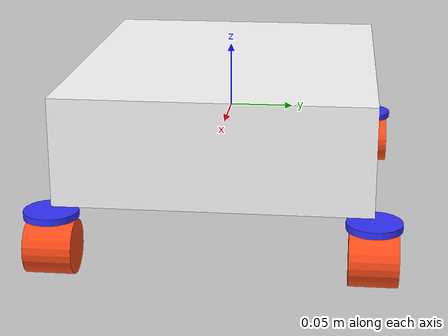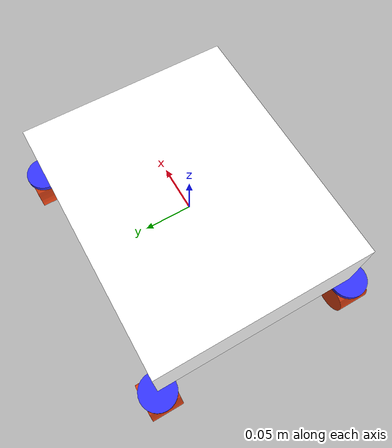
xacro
<?xml version="1.0"?>
<robot xmlns:xacro="http://www.ros.org/wiki/xacro"  name="robot">

    <xacro:include filename="inertial_macros.xacro" />
    <xacro:include filename="robot_properties.xacro" />
    <xacro:include filename="robot_swerve_drive.xacro" />
    <xacro:include filename="robot_core.xacro" />
    <xacro:include filename="ros2_control.xacro"/>
    <!--xacro:include filename="sim_control.xacro" /-->

</robot>

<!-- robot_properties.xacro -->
<robot xmlns:xacro="http://www.ros.org/wiki/xacro">
    <xacro:property name="chassis_length" value="0.280" />`
    <xacro:property name="chassis_width" value="0.230" />`
    <xacro:property name="chassis_height" value="0.080" />`
    <xacro:property name="wheel_length" value="0.035" />
    <xacro:property name="wheel_radius" value="0.020" />
    <xacro:property name="steering_length" value="0.005" />
    <xacro:property name="steering_radius" value="0.020" />
    <xacro:property name="steering_joint_x" value="0.140" />`
    <xacro:property name="steering_joint_y" value="0.115" />`
    <xacro:property name="steering_joint_z" value="0.045" />`
</robot>

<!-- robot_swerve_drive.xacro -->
<robot xmlns:xacro="http://www.ros.org/wiki/xacro">
    <xacro:macro name="swerve_drive" params="name x y z r">
        <link name="${name}_wheel">
            <xacro:include filename="robot_wheel.xacro" />
        </link>

        <link name="${name}_steering">
            <xacro:include filename="robot_steering.xacro" />
        </link>

        <joint name="${name}_steering_joint" type="revolute">
            <parent link="chassis"/>
                <child link="${name}_steering"/>
                <origin xyz="${x*steering_joint_x} ${y*steering_joint_y} ${z*steering_joint_z}"/>
                <limit effort="1000.0" lower="${-pi/3}" upper="${pi/3}" velocity="0.1"/>
            <axis xyz="0 0 -1"/>
        </joint>

        <joint name="${name}_wheel_joint" type="continuous">
            <parent link="${name}_steering"/>
            <child link="${name}_wheel"/>
            <origin xyz="0 0 -0.025" rpy="${r*pi/2} 0 0"/>
            <axis xyz="0 0 -1"/>
        </joint>
        <gazebo reference="${name}_wheel">
            <material>Gazebo/Orange</material>
        </gazebo>
        <gazebo reference="${name}_steering">
            <material>Gazebo/Yellow</material>
        </gazebo>
</xacro:macro>

    <xacro:macro name="swerve_drive_ros2_control" params="name">
        <joint name="${name}_wheel_joint">
            <command_interface name="velocity">
                <param name="min">-10</param>
                <param name="max">10</param>
            </command_interface>
            <state_interface name="velocity" />
            <state_interface name="position" />
        </joint>
        <joint name="${name}_steering_joint">
            <command_interface name="position">
                <param name="min">${-pi/3}</param>
                <param name="max">${pi/3}</param>
            </command_interface>
            <state_interface name="position" />
        </joint>
    </xacro:macro>
</robot>

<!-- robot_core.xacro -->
<robot xmlns:xacro="http://www.ros.org/wiki/xacro">
	<material name="white">
	    <color rgba="1 1 1 1"/>
	</material>

	<material name="orange">
	    <color rgba="1 0.3 0.1 1"/>
	</material>

	<material name="blue">
	    <color rgba="0.2 0.2 1 1"/>
	</material>

	<material name="black">
	    <color rgba="0 0 0 1"/>
    </material>
<link name="base_link">
</link>
<joint name="chassis_joint" type="fixed">
	<parent link="base_link"/>
    	<child link="chassis"/>
    	<origin xyz="0 0 0"/>
</joint>

<link name="chassis">
    <visual>
        <origin xyz="0 0 0" rpy="0 0 0"/>
        <geometry>
            <box size="${chassis_length} ${chassis_width} ${chassis_height}"/>
        </geometry>
        <material name="white"/>
    </visual>
    <collision>
        <origin xyz="0 0 0" rpy="0 0 0"/>
        <geometry>
            <box size="${chassis_length} ${chassis_width} ${chassis_height}"/>
        </geometry>
    </collision>
    <xacro:inertial_box mass="0.5" x="${chassis_length}" y="${chassis_width}" z="${chassis_height}">
        <origin xyz="0 0 0" rpy="0 0 0"/>
    </xacro:inertial_box>
</link>

<xacro:swerve_drive name="front_right" x="1" y="1" z="-1" r="-1"/>
<xacro:swerve_drive name="rear_right" x="-1" y="1" z="-1" r="-1"/>
<xacro:swerve_drive name="front_left" x="1" y="-1" z="-1" r="1"/>
<xacro:swerve_drive name="rear_left" x="-1" y="-1" z="-1" r="1"/>

<gazebo reference="base_link">
    <material>Gazebo/Green</material>
</gazebo>

<gazebo reference="chassis">
    <material>Gazebo/Blue</material>
</gazebo>

</robot>

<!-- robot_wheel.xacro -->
<link xmlns:xacro="http://www.ros.org/wiki/xacro">
	<visual>
	    <geometry>
            <cylinder length="${wheel_length}" radius="${wheel_radius}" />
	    </geometry>
	    <material name="orange"/>
    </visual>
    <collision>
	    <geometry>
            <cylinder length="${wheel_length}" radius="${wheel_radius}" />
	    </geometry>
    </collision>
    <xacro:inertial_cylinder mass="0.1" length="${wheel_length}" radius="${wheel_radius}">
        <origin xyz="0 0 0" rpy="0 0 0"/>
    </xacro:inertial_cylinder>
</link>

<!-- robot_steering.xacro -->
<link xmlns:xacro="http://www.ros.org/wiki/xacro">
	<visual>
	    <geometry>
            <cylinder length="${steering_length}" radius="${steering_radius}" />
	    </geometry>
	    <material name="blue"/>
    </visual>
    <collision>
	    <geometry>
            <cylinder length="${steering_length}" radius="${steering_radius}" />
	    </geometry>
    </collision>
    <xacro:inertial_cylinder mass="0.1" length="${steering_length}" radius="${steering_radius}">
        <origin xyz="0 0 0" rpy="0 0 0"/>
    </xacro:inertial_cylinder>
</link>
